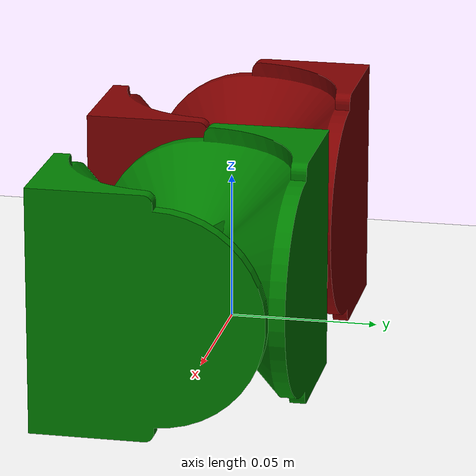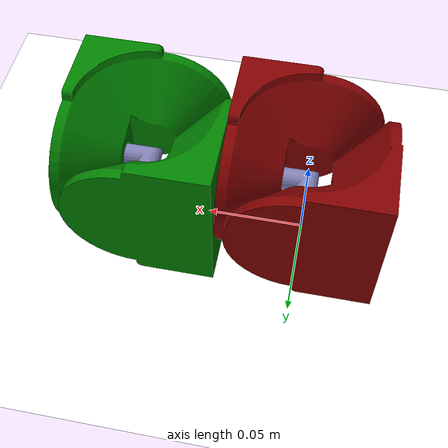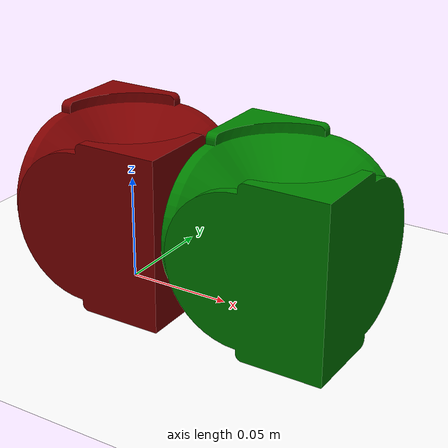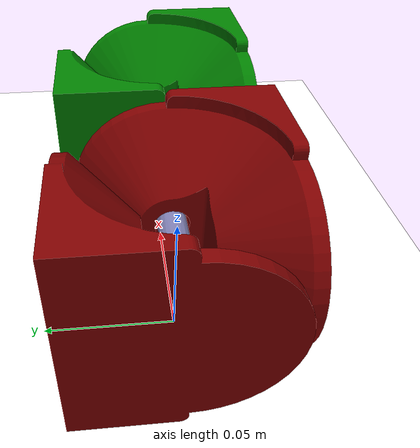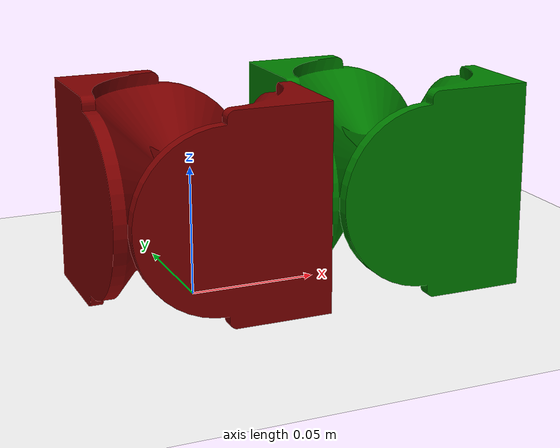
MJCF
<mujoco model="UBotModule">

	<visual>
		<global fovy="10" />
		<rgba haze="0.15 0.25 0.35 1" />
		<quality shadowsize="8192" />
		<map stiffness="700" shadowscale="1" fogstart="10" fogend="15" zfar="40" haze="0.3" />
	</visual>

	<compiler inertiafromgeom="auto" angle="degree" balanceinertia="true" boundmass="0.001"
		boundinertia="0.001"></compiler>
	<option timestep="0.016" iterations="50" solver="Newton" tolerance="1e-10" />
	<size njmax="500" nconmax="100" nstack="2000" />
	<default>
		<joint limited="false" damping="5" armature="0.1" stiffness="0"></joint>
		<geom contype="1" type="mesh" conaffinity="1" condim="3" margin="0.0001" solref=".02 1"
			solimp=".9 .95 .001 0.5 1"></geom>
		<mesh scale="1 1 1" />
		<position kp="100" />
		<camera pos="0.332 -0.105 0.364" xyaxes="0.140 0.990 0.000 -0.689 0.098 0.719" />
	</default>

	<asset>
		<texture type="skybox" builtin="gradient" rgb1="0.6 0.6 0.6" rgb2="0 0 0" width="512"
			height="512" />
		<mesh name="ma" file="./ma.obj" />
		<mesh name="mb" file="./mb.obj" />
		<mesh name="ax" file="./ax.obj" />
		<texture type="skybox" builtin="gradient" rgb1="0.3 0.5 0.7" rgb2="0 0 0" width="512"
			height="512" />
		<texture name="texplane" type="2d" builtin="checker" rgb1=".2 .3 .4" rgb2=".1 0.15 0.2"
			width="512" height="512" mark="cross" markrgb=".8 .8 .8" />
		<texture name="texcarpet" type="2d" file="carpet.png" />
		<texture name="texsponge" type="2d" file="sponge.png" />
		<texture name="texmarble" type="cube" file="marble.png" />
		<texture name="texgeom" type="cube" builtin="flat" mark="cross" width="127" height="1278"
			rgb1="0.8 0.6 0.4" rgb2="0.8 0.6 0.4" markrgb="1 1 1" random="0.01"></texture>
		<material name="geom" texture="texgeom" texuniform="true"></material>
		<material name="matplane" reflectance="0.3" texture="texplane" texrepeat="5 5"
			texuniform="true" />
		<material name="matcarpet" texture="texcarpet" />
		<material name="matsponge" texture="texsponge" specular="0.3" />
		<material name="matmarble" texture="texmarble" rgba=".7 .7 .7 1" />
		<material name="ma" specular="1" shininess="1" emission="0"
			rgba="0.5119999961853026 0.0 0.0 1.0" />
		<material name="mb" specular="1" shininess="1" />
	</asset>

	<worldbody>
		<geom name="ground" type="plane" size="0 0 1" pos="0 0 0" quat="1 0 0 0" rgba="1 1 1 1"
			material="matplane" contype="127" conaffinity="127" condim="1" />
		<light directional="true" diffuse="1.0 1.0 1.0" specular=".1 .1 .1" pos="0.0 0.0 1"
			dir="0 0 -1" />

		<!--light directional="false" diffuse="1.0 1.0 1.0" specular=".1 .1 .1" pos="-1 -1 1" dir="1
		1 -1"/-->
		<body name="ma" pos="0.0 0.0 0.04" euler="90 90 0">
			<geom name="ma" mesh="ma" material="ma" rgba="0.5 0.0 0.0 1.0" contype="1"
				conaffinity="1" />
			<inertial pos="0        0        0" mass="0.2" />
			<freejoint name="root" />
			<body name="ax" pos="0.0 0.0 0.0">
				<geom name="ax" mesh="ax" rgba="0.5 0.5 0.7 1" contype="2" conaffinity="2" />
				<inertial pos="0        0        0" mass="0.02" />
				<joint name="axis1" axis="1        0        0" limited="true"  range="-90 90" />
				<body name="mb" pos="0.0 0.0 0.0">
					<geom name="mb" mesh="mb" material="mb" rgba="0.5 0.0 0.0 1" contype="4"
						conaffinity="4" />
					<inertial pos="0        0        0" mass="0.2" />
					<joint name="axis2" type="hinge" axis="0        0        1" limited="true"  range="-90 90" />
					<body name="ma1" pos="0.0 0.0 0.08" euler="0 0 0">
						<geom name="ma1" mesh="ma" material="ma" rgba="0.0 0.5 0.0 1" contype="8"
							conaffinity="8" />
						<inertial pos="0        0        0" mass="0.2" />
						<body name="ax1" pos="0.0 0.0 0.0">
							<geom name="ax1" type="mesh" mesh="ax" rgba="0.5 0.5 0.7 1" contype="16"
								conaffinity="16" />
							<inertial pos="0        0        0" mass="0.02" />
							<joint name="axis1_1" axis="1        0        0" limited="true"  range="-90 90" />
							<body name="mb1" pos="0.0 0.0 0.0">
								<geom name="mb1" type="mesh" mesh="mb" material="mb"
									rgba="0.0 0.5 0.0 1" contype="32" conaffinity="32" />
								<inertial pos="0        0        0" mass="0.2" />
								<joint name="axis2_1" axis="0        0        1" limited="true"  range="-90 90" />
							</body>
						</body>
					</body>
				</body>
			</body>
		</body>
	</worldbody>
	<actuator>
		<position name="motor1" joint="axis1" ctrllimited="true" ctrlrange="-1.57 1.57" />
		<position name="motor2" joint="axis2" ctrllimited="true" ctrlrange="-1.57 1.57" />
		<position name="motor3" joint="axis1_1" ctrllimited="true" ctrlrange="-1.57 1.57" />
		<position name="motor4" joint="axis2_1" ctrllimited="true" ctrlrange="-1.57 1.57" />
	</actuator>
</mujoco>
